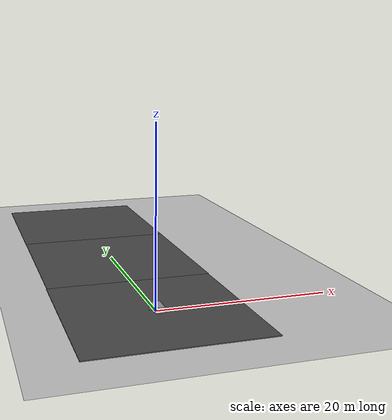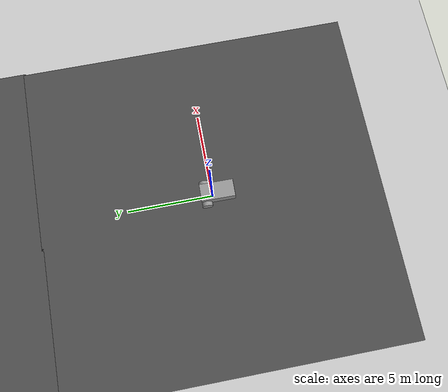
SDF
<sdf version="1.6">
 <world name="default">
  <light name="sun" type="directional">
   <cast_shadows>0</cast_shadows>
   <pose>0 0 10 0 -0 0</pose>
   <diffuse>0.8 0.8 0.8 1</diffuse>
   <specular>0.1 0.1 0.1 1</specular>
   <attenuation>
    <range>1000</range>
    <constant>0.9</constant>
    <linear>0.01</linear>
    <quadratic>0.001</quadratic>
   </attenuation>
   <direction>-0.5 0.5 -1</direction>
  </light>
  <model name="ground_plane">
   <static>1</static>
   <link name="link">
    <collision name="collision">
     <geometry><plane><normal>0 0 1</normal><size>100 100</size></plane></geometry>
     <surface><friction><ode><mu>100</mu><mu2>50</mu2></ode></friction></surface>
    </collision>
    <visual name="visual">
     <cast_shadows>0</cast_shadows>
     <geometry><plane><normal>0 0 1</normal><size>100 100</size></plane></geometry>
     <material>
      <script><uri>file://media/materials/scripts/gazebo.material</uri><name>Gazebo/Grey</name></script>
     </material>
    </visual>
   </link>
  </model>
  <gravity>0 0 -100</gravity>
  <magnetic_field>0 0 0</magnetic_field>
  <atmosphere type="adiabatic"/>
  <physics name="default_physics" default="0" type="ode">
   <max_step_size>0.01</max_step_size>
   <real_time_factor>100</real_time_factor>
   <real_time_update_rate>100000</real_time_update_rate>
  </physics>
  <scene><ambient>0.4 0.4 0.4 1</ambient><background>0.7 0.7 0.7 1</background><shadows>0</shadows></scene>
  <spherical_coordinates>
   <surface_model>EARTH_WGS84</surface_model>
   <latitude_deg>0</latitude_deg>
   <longitude_deg>0</longitude_deg>
   <elevation>0</elevation>
   <heading_deg>0</heading_deg>
  </spherical_coordinates>
  <model name="MyCarBot">
   <link name="link_0">
    <pose>-0.30064 -0.00619 0.079104 0 -0 0</pose>
    <inertial>
     <mass>1.22899</mass>
     <inertia>
      <ixx>0.142914</ixx>
      <ixy>0</ixy>
      <ixz>0</ixz>
      <iyy>0.431709</iyy>
      <iyz>0</iyz>
      <izz>0.493628</izz>
     </inertia>
    </inertial>
    <visual name="visual">
     <geometry><box><size>1.95443 1 0.628837</size></box></geometry>
     <material>
      <lighting>1</lighting>
      <script><uri>file://media/materials/scripts/gazebo.material</uri><name>Gazebo/Grey</name></script>
      <ambient>0.3 0.3 0.3 1</ambient>
      <diffuse>0.7 0.7 0.7 1</diffuse>
      <specular>0.01 0.01 0.01 1</specular>
      <emissive>0 0 0 1</emissive>
      <shader type="vertex"><normal_map>__default__</normal_map></shader>
     </material>
     <cast_shadows>0</cast_shadows>
    </visual>
    <collision name="collision">
     <geometry><box><size>1.95443 1 0.628837</size></box></geometry>
     <surface>
      <friction>
       <ode><mu>1</mu><mu2>1</mu2><fdir1>0 0 0</fdir1><slip1>0</slip1><slip2>0</slip2></ode>
       <torsional>
        <coefficient>1</coefficient>
        <patch_radius>0</patch_radius>
        <surface_radius>0</surface_radius>
        <use_patch_radius>1</use_patch_radius>
        <ode><slip>0</slip></ode>
       </torsional>
      </friction>
      <bounce><restitution_coefficient>0</restitution_coefficient><threshold>1e+06</threshold></bounce>
      <contact>
       <collide_without_contact>0</collide_without_contact>
       <collide_without_contact_bitmask>1</collide_without_contact_bitmask>
       <collide_bitmask>1</collide_bitmask>
       <ode>
        <soft_cfm>0</soft_cfm>
        <soft_erp>0.2</soft_erp>
        <kp>1e+13</kp>
        <kd>1</kd>
        <max_vel>10</max_vel>
        <min_depth>0</min_depth>
       </ode>
       <bullet>
        <split_impulse>1</split_impulse>
        <split_impulse_penetration_threshold>-0.01</split_impulse_penetration_threshold>
        <soft_cfm>0</soft_cfm>
        <soft_erp>0.2</soft_erp>
        <kp>1e+13</kp>
        <kd>1</kd>
       </bullet>
      </contact>
     </surface>
    </collision>
   </link>
   <link name="link_1">
    <pose>0.376578 -0.631219 -0.120896 1.5707 -0 0</pose>
    <inertial>
     <mass>1</mass>
     <inertia><ixx>0.145833</ixx><ixy>0</ixy><ixz>0</ixz><iyy>0.145833</iyy><iyz>0</iyz><izz>0.125</izz></inertia>
    </inertial>
    <visual name="visual">
     <geometry><cylinder><radius>0.3</radius><length>0.25</length></cylinder></geometry>
     <material>
      <lighting>1</lighting>
      <script><uri>file://media/materials/scripts/gazebo.material</uri><name>Gazebo/Grey</name></script>
      <ambient>0.3 0.3 0.3 1</ambient>
      <diffuse>0.7 0.7 0.7 1</diffuse>
      <specular>0.01 0.01 0.01 1</specular>
      <emissive>0 0 0 1</emissive>
      <shader type="vertex"><normal_map>__default__</normal_map></shader>
     </material>
     <cast_shadows>0</cast_shadows>
    </visual>
    <collision name="collision">
     <geometry><cylinder><radius>0.3</radius><length>0.25</length></cylinder></geometry>
     <surface>
      <friction>
       <ode><mu>1</mu><mu2>1</mu2><fdir1>0 0 0</fdir1><slip1>0</slip1><slip2>0</slip2></ode>
       <torsional>
        <coefficient>1</coefficient>
        <patch_radius>0</patch_radius>
        <surface_radius>0</surface_radius>
        <use_patch_radius>1</use_patch_radius>
        <ode><slip>0</slip></ode>
       </torsional>
      </friction>
      <bounce><restitution_coefficient>0</restitution_coefficient><threshold>1e+06</threshold></bounce>
      <contact>
       <collide_without_contact>0</collide_without_contact>
       <collide_without_contact_bitmask>1</collide_without_contact_bitmask>
       <collide_bitmask>1</collide_bitmask>
       <ode>
        <soft_cfm>0</soft_cfm>
        <soft_erp>0.2</soft_erp>
        <kp>1e+13</kp>
        <kd>1</kd>
        <max_vel>10</max_vel>
        <min_depth>0</min_depth>
       </ode>
       <bullet>
        <split_impulse>1</split_impulse>
        <split_impulse_penetration_threshold>-0.01</split_impulse_penetration_threshold>
        <soft_cfm>0</soft_cfm>
        <soft_erp>0.2</soft_erp>
        <kp>1e+13</kp>
        <kd>1</kd>
       </bullet>
      </contact>
     </surface>
    </collision>
   </link>
   <link name="link_1_clone">
    <pose>0.376578 0.618839 -0.120896 1.5707 -0 0</pose>
    <inertial>
     <mass>1</mass>
     <inertia><ixx>0.145833</ixx><ixy>0</ixy><ixz>0</ixz><iyy>0.145833</iyy><iyz>0</iyz><izz>0.125</izz></inertia>
    </inertial>
    <visual name="visual">
     <geometry><cylinder><radius>0.3</radius><length>0.25</length></cylinder></geometry>
     <material>
      <lighting>1</lighting>
      <script><uri>file://media/materials/scripts/gazebo.material</uri><name>Gazebo/Grey</name></script>
      <ambient>0.3 0.3 0.3 1</ambient>
      <diffuse>0.7 0.7 0.7 1</diffuse>
      <specular>0.01 0.01 0.01 1</specular>
      <emissive>0 0 0 1</emissive>
      <shader type="vertex"><normal_map>__default__</normal_map></shader>
     </material>
     <cast_shadows>0</cast_shadows>
    </visual>
    <collision name="collision">
     <geometry><cylinder><radius>0.3</radius><length>0.25</length></cylinder></geometry>
     <surface>
      <friction>
       <ode><mu>1</mu><mu2>1</mu2><fdir1>0 0 0</fdir1><slip1>0</slip1><slip2>0</slip2></ode>
       <torsional>
        <coefficient>1</coefficient>
        <patch_radius>0</patch_radius>
        <surface_radius>0</surface_radius>
        <use_patch_radius>1</use_patch_radius>
        <ode><slip>0</slip></ode>
       </torsional>
      </friction>
      <bounce><restitution_coefficient>0</restitution_coefficient><threshold>1e+06</threshold></bounce>
      <contact>
       <collide_without_contact>0</collide_without_contact>
       <collide_without_contact_bitmask>1</collide_without_contact_bitmask>
       <collide_bitmask>1</collide_bitmask>
       <ode>
        <soft_cfm>0</soft_cfm>
        <soft_erp>0.2</soft_erp>
        <kp>1e+13</kp>
        <kd>1</kd>
        <max_vel>10</max_vel>
        <min_depth>0</min_depth>
       </ode>
       <bullet>
        <split_impulse>1</split_impulse>
        <split_impulse_penetration_threshold>-0.01</split_impulse_penetration_threshold>
        <soft_cfm>0</soft_cfm>
        <soft_erp>0.2</soft_erp>
        <kp>1e+13</kp>
        <kd>1</kd>
       </bullet>
      </contact>
     </surface>
    </collision>
   </link>
   <link name="link_2">
    <pose>-1.07786 -0.00619 -0.220896 0 -0 0</pose>
    <inertial>
     <mass>1</mass>
     <inertia><ixx>0.1</ixx><ixy>0</ixy><ixz>0</ixz><iyy>0.1</iyy><iyz>0</iyz><izz>0.1</izz></inertia>
    </inertial>
    <visual name="visual">
     <geometry><sphere><radius>0.2</radius></sphere></geometry>
     <material>
      <lighting>1</lighting>
      <script><uri>file://media/materials/scripts/gazebo.material</uri><name>Gazebo/Grey</name></script>
      <ambient>0.3 0.3 0.3 1</ambient>
      <diffuse>0.7 0.7 0.7 1</diffuse>
      <specular>0.01 0.01 0.01 1</specular>
      <emissive>0 0 0 1</emissive>
      <shader type="vertex"><normal_map>__default__</normal_map></shader>
     </material>
     <cast_shadows>0</cast_shadows>
    </visual>
    <collision name="collision">
     <geometry><sphere><radius>0.2</radius></sphere></geometry>
     <surface>
      <friction>
       <ode><mu>1</mu><mu2>1</mu2><fdir1>0 0 0</fdir1><slip1>0</slip1><slip2>0</slip2></ode>
       <torsional>
        <coefficient>1</coefficient>
        <patch_radius>0</patch_radius>
        <surface_radius>0</surface_radius>
        <use_patch_radius>1</use_patch_radius>
        <ode><slip>0</slip></ode>
       </torsional>
      </friction>
      <bounce><restitution_coefficient>0</restitution_coefficient><threshold>1e+06</threshold></bounce>
      <contact>
       <collide_without_contact>0</collide_without_contact>
       <collide_without_contact_bitmask>1</collide_without_contact_bitmask>
       <collide_bitmask>1</collide_bitmask>
       <ode>
        <soft_cfm>0</soft_cfm>
        <soft_erp>0.2</soft_erp>
        <kp>1e+13</kp>
        <kd>1</kd>
        <max_vel>10</max_vel>
        <min_depth>0</min_depth>
       </ode>
       <bullet>
        <split_impulse>1</split_impulse>
        <split_impulse_penetration_threshold>-0.01</split_impulse_penetration_threshold>
        <soft_cfm>0</soft_cfm>
        <soft_erp>0.2</soft_erp>
        <kp>1e+13</kp>
        <kd>1</kd>
       </bullet>
      </contact>
     </surface>
    </collision>
   </link>
   <joint name="link_0_JOINT_0" type="revolute">
    <parent>link_0</parent>
    <child>link_1_clone</child>
    <axis>
     <xyz>0 0 1</xyz>
     <use_parent_model_frame>0</use_parent_model_frame>
     <limit>
      <lower>-1.79769e+308</lower>
      <upper>1.79769e+308</upper>
      <effort>-1</effort>
      <velocity>-1</velocity>
     </limit>
     <dynamics>
      <spring_reference>0</spring_reference>
      <spring_stiffness>0</spring_stiffness>
      <damping>0</damping>
      <friction>0</friction>
     </dynamics>
    </axis>
    <physics>
     <ode><limit><cfm>0</cfm><erp>0.2</erp></limit><suspension><cfm>0</cfm><erp>0.2</erp></suspension></ode>
    </physics>
   </joint>
   <joint name="link_0_JOINT_1" type="revolute">
    <parent>link_0</parent>
    <child>link_1</child>
    <axis>
     <xyz>0 0 1</xyz>
     <use_parent_model_frame>0</use_parent_model_frame>
     <limit>
      <lower>-1.79769e+308</lower>
      <upper>1.79769e+308</upper>
      <effort>-1</effort>
      <velocity>-1</velocity>
     </limit>
     <dynamics>
      <spring_reference>0</spring_reference>
      <spring_stiffness>0</spring_stiffness>
      <damping>0</damping>
      <friction>0</friction>
     </dynamics>
    </axis>
    <physics>
     <ode><limit><cfm>0</cfm><erp>0.2</erp></limit><suspension><cfm>0</cfm><erp>0.2</erp></suspension></ode>
    </physics>
   </joint>
   <joint name="link_0_JOINT_2" type="ball">
    <parent>link_0</parent>
    <child>link_2</child>
    <physics>
     <ode><limit><cfm>0</cfm><erp>0.2</erp></limit><suspension><cfm>0</cfm><erp>0.2</erp></suspension></ode>
    </physics>
   </joint>
   <static>0</static>
   <allow_auto_disable>0</allow_auto_disable>
   <plugin name="line_follow" filename="libline_follow.so"/>
   <pose>0.121763 0.013636 0.420881 1.5e-05 -4.4e-05 1.55929</pose>
  </model>
  <model name="asphalt_plane">
   <static>1</static>
   <link name="link">
    <collision name="collision"><geometry><box><size>20 20 0.1</size></box></geometry></collision>
    <visual name="visual">
     <cast_shadows>0</cast_shadows>
     <geometry><box><size>20 20 0.1</size></box></geometry>
     <material>
      <script>
       <uri>model://asphalt_plane/materials/scripts</uri>
       <uri>model://asphalt_plane/materials/textures</uri>
       <name>vrc/asphalt</name>
      </script>
     </material>
    </visual>
   </link>
   <pose>-0.158969 0.122732 0 0 -0 0</pose>
  </model>
  <model name="asphalt_plane_0">
   <static>1</static>
   <link name="link">
    <collision name="collision"><geometry><box><size>20 20 0.1</size></box></geometry></collision>
    <visual name="visual">
     <cast_shadows>0</cast_shadows>
     <geometry><box><size>20 20 0.1</size></box></geometry>
     <material>
      <script>
       <uri>model://asphalt_plane/materials/scripts</uri>
       <uri>model://asphalt_plane/materials/textures</uri>
       <name>vrc/asphalt</name>
      </script>
     </material>
    </visual>
   </link>
   <pose>-0.094866 20.0175 0 0 -0 0</pose>
  </model>
  <model name="asphalt_plane_1">
   <static>1</static>
   <link name="link">
    <collision name="collision"><geometry><box><size>20 20 0.1</size></box></geometry></collision>
    <visual name="visual">
     <cast_shadows>0</cast_shadows>
     <geometry><box><size>20 20 0.1</size></box></geometry>
     <material>
      <script>
       <uri>model://asphalt_plane/materials/scripts</uri>
       <uri>model://asphalt_plane/materials/textures</uri>
       <name>vrc/asphalt</name>
      </script>
     </material>
    </visual>
   </link>
   <pose>-0.111225 39.7281 0 0 -0 0</pose>
  </model>
 </world>
</sdf>
